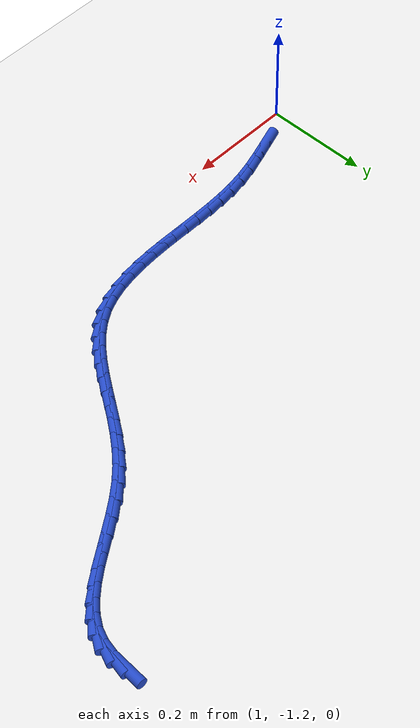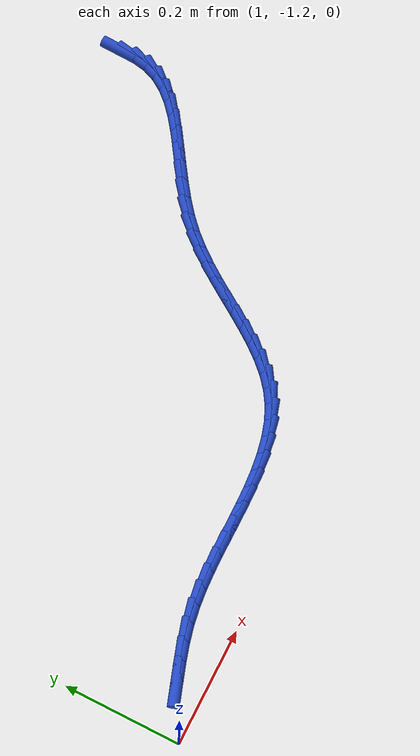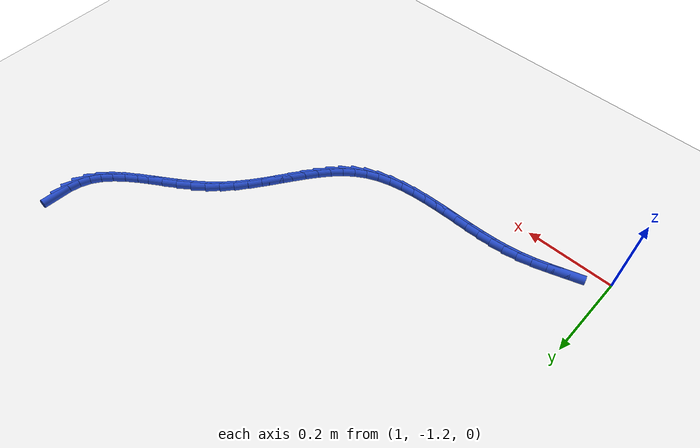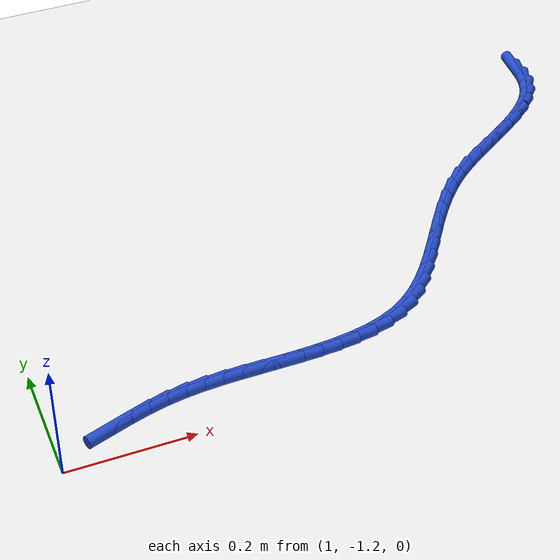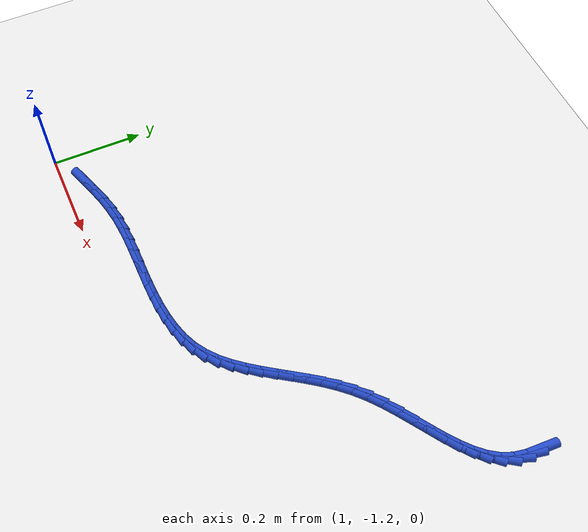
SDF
<sdf version="1.6">
 <world name="default">
  <model name="ground_plane">
   <static>1</static>
   <link name="link">
    <collision name="collision">
     <geometry><plane><normal>0 0 1</normal><size>100 100</size></plane></geometry>
     <surface><friction><ode><mu>100</mu><mu2>50</mu2></ode></friction></surface>
    </collision>
    <visual name="visual">
     <cast_shadows>0</cast_shadows>
     <geometry><plane><normal>0 0 1</normal><size>100 100</size></plane></geometry>
     <material>
      <script><uri>file://media/materials/scripts/gazebo.material</uri><name>Gazebo/WhiteGlow</name></script>
     </material>
    </visual>
   </link>
  </model>
  <model name="line">
   <link name="link_141">
    <pose>2.0271364555693054 -0.5661343951138016 0.01 0 1.57 1.5183302429395373</pose>
    <collision name="collision">
     <geometry><cylinder><radius>0.01</radius><length>0.08</length></cylinder></geometry>
    </collision>
    <visual name="visual">
     <material>
      <script><name>Gazebo/Blue</name><uri>file://media/materials/scripts/gazebo.material</uri></script>
     </material>
     <geometry><cylinder><radius>0.01</radius><length>0.08</length></cylinder></geometry>
    </visual>
   </link>
   <link name="link_142">
    <pose>2.0257152741801185 -0.5931971568366348 0.01 0 1.57 1.3664958052529699</pose>
    <collision name="collision">
     <geometry><cylinder><radius>0.01</radius><length>0.08</length></cylinder></geometry>
    </collision>
    <visual name="visual">
     <material>
      <script><name>Gazebo/Blue</name><uri>file://media/materials/scripts/gazebo.material</uri></script>
     </material>
     <geometry><cylinder><radius>0.01</radius><length>0.08</length></cylinder></geometry>
    </visual>
   </link>
   <link name="link_143">
    <pose>2.0204719739128807 -0.6185037341881778 0.01 0 1.57 1.171100520590919</pose>
    <collision name="collision">
     <geometry><cylinder><radius>0.01</radius><length>0.08</length></cylinder></geometry>
    </collision>
    <visual name="visual">
     <material>
      <script><name>Gazebo/Blue</name><uri>file://media/materials/scripts/gazebo.material</uri></script>
     </material>
     <geometry><cylinder><radius>0.01</radius><length>0.08</length></cylinder></geometry>
    </visual>
   </link>
   <link name="link_144">
    <pose>2.0106281609307888 -0.6418063016502774 0.01 0 1.57 0.9733500853774371</pose>
    <collision name="collision">
     <geometry><cylinder><radius>0.01</radius><length>0.08</length></cylinder></geometry>
    </collision>
    <visual name="visual">
     <material>
      <script><name>Gazebo/Blue</name><uri>file://media/materials/scripts/gazebo.material</uri></script>
     </material>
     <geometry><cylinder><radius>0.01</radius><length>0.08</length></cylinder></geometry>
    </visual>
   </link>
   <link name="link_145">
    <pose>1.9961014492996434 -0.663156732418748 0.01 0 1.57 0.8187681195719999</pose>
    <collision name="collision">
     <geometry><cylinder><radius>0.01</radius><length>0.08</length></cylinder></geometry>
    </collision>
    <visual name="visual">
     <material>
      <script><name>Gazebo/Blue</name><uri>file://media/materials/scripts/gazebo.material</uri></script>
     </material>
     <geometry><cylinder><radius>0.01</radius><length>0.08</length></cylinder></geometry>
    </visual>
   </link>
   <link name="link_146">
    <pose>1.9775925171220061 -0.6829440844884493 0.01 0 1.57 0.7083480207902151</pose>
    <collision name="collision">
     <geometry><cylinder><radius>0.01</radius><length>0.08</length></cylinder></geometry>
    </collision>
    <visual name="visual">
     <material>
      <script><name>Gazebo/Blue</name><uri>file://media/materials/scripts/gazebo.material</uri></script>
     </material>
     <geometry><cylinder><radius>0.01</radius><length>0.08</length></cylinder></geometry>
    </visual>
   </link>
   <link name="link_147">
    <pose>1.9558437614203243 -0.7015753798839475 0.01 0 1.57 0.6354717288499325</pose>
    <collision name="collision">
     <geometry><cylinder><radius>0.01</radius><length>0.08</length></cylinder></geometry>
    </collision>
    <visual name="visual">
     <material>
      <script><name>Gazebo/Blue</name><uri>file://media/materials/scripts/gazebo.material</uri></script>
     </material>
     <geometry><cylinder><radius>0.01</radius><length>0.08</length></cylinder></geometry>
    </visual>
   </link>
   <link name="link_148">
    <pose>1.9315975792170474 -0.7194576406298072 0.01 0 1.57 0.5934703453839583</pose>
    <collision name="collision">
     <geometry><cylinder><radius>0.01</radius><length>0.08</length></cylinder></geometry>
    </collision>
    <visual name="visual">
     <material>
      <script><name>Gazebo/Blue</name><uri>file://media/materials/scripts/gazebo.material</uri></script>
     </material>
     <geometry><cylinder><radius>0.01</radius><length>0.08</length></cylinder></geometry>
    </visual>
   </link>
   <link name="link_149">
    <pose>1.9055963675346215 -0.736997888750594 0.01 0 1.57 0.5775780833458279</pose>
    <collision name="collision">
     <geometry><cylinder><radius>0.01</radius><length>0.08</length></cylinder></geometry>
    </collision>
    <visual name="visual">
     <material>
      <script><name>Gazebo/Blue</name><uri>file://media/materials/scripts/gazebo.material</uri></script>
     </material>
     <geometry><cylinder><radius>0.01</radius><length>0.08</length></cylinder></geometry>
    </visual>
   </link>
   <link name="link_150">
    <pose>1.8785825233954947 -0.7546031462708735 0.01 0 1.57 0.5851528410249432</pose>
    <collision name="collision">
     <geometry><cylinder><radius>0.01</radius><length>0.08</length></cylinder></geometry>
    </collision>
    <visual name="visual">
     <material>
      <script><name>Gazebo/Blue</name><uri>file://media/materials/scripts/gazebo.material</uri></script>
     </material>
     <geometry><cylinder><radius>0.01</radius><length>0.08</length></cylinder></geometry>
    </visual>
   </link>
   <link name="link_151">
    <pose>1.8512984438221147 -0.7726804352152115 0.01 0 1.57 0.615416384964672</pose>
    <collision name="collision">
     <geometry><cylinder><radius>0.01</radius><length>0.08</length></cylinder></geometry>
    </collision>
    <visual name="visual">
     <material>
      <script><name>Gazebo/Blue</name><uri>file://media/materials/scripts/gazebo.material</uri></script>
     </material>
     <geometry><cylinder><radius>0.01</radius><length>0.08</length></cylinder></geometry>
    </visual>
   </link>
   <link name="link_152">
    <pose>1.8244865258369296 -0.7916367776081733 0.01 0 1.57 0.6691065834594263</pose>
    <collision name="collision">
     <geometry><cylinder><radius>0.01</radius><length>0.08</length></cylinder></geometry>
    </collision>
    <visual name="visual">
     <material>
      <script><name>Gazebo/Blue</name><uri>file://media/materials/scripts/gazebo.material</uri></script>
     </material>
     <geometry><cylinder><radius>0.01</radius><length>0.08</length></cylinder></geometry>
    </visual>
   </link>
   <link name="link_153">
    <pose>1.798889166462386 -0.8118791954743239 0.01 0 1.57 0.7469718294237057</pose>
    <collision name="collision">
     <geometry><cylinder><radius>0.01</radius><length>0.08</length></cylinder></geometry>
    </collision>
    <visual name="visual">
     <material>
      <script><name>Gazebo/Blue</name><uri>file://media/materials/scripts/gazebo.material</uri></script>
     </material>
     <geometry><cylinder><radius>0.01</radius><length>0.08</length></cylinder></geometry>
    </visual>
   </link>
   <link name="link_154">
    <pose>1.7752215038870214 -0.8337944124671288 0.01 0 1.57 0.82867931411214</pose>
    <collision name="collision">
     <geometry><cylinder><radius>0.01</radius><length>0.08</length></cylinder></geometry>
    </collision>
    <visual name="visual">
     <material>
      <script><name>Gazebo/Blue</name><uri>file://media/materials/scripts/gazebo.material</uri></script>
     </material>
     <geometry><cylinder><radius>0.01</radius><length>0.08</length></cylinder></geometry>
    </visual>
   </link>
   <link name="link_155">
    <pose>1.7536273132636349 -0.8573436850696542 0.01 0 1.57 0.8929504941734263</pose>
    <collision name="collision">
     <geometry><cylinder><radius>0.01</radius><length>0.08</length></cylinder></geometry>
    </collision>
    <visual name="visual">
     <material>
      <script><name>Gazebo/Blue</name><uri>file://media/materials/scripts/gazebo.material</uri></script>
     </material>
     <geometry><cylinder><radius>0.01</radius><length>0.08</length></cylinder></geometry>
    </visual>
   </link>
   <link name="link_156">
    <pose>1.7337082832086155 -0.8820846034261689 0.01 0 1.57 0.9384947552986057</pose>
    <collision name="collision">
     <geometry><cylinder><radius>0.01</radius><length>0.08</length></cylinder></geometry>
    </collision>
    <visual name="visual">
     <material>
      <script><name>Gazebo/Blue</name><uri>file://media/materials/scripts/gazebo.material</uri></script>
     </material>
     <geometry><cylinder><radius>0.01</radius><length>0.08</length></cylinder></geometry>
    </visual>
   </link>
   <link name="link_157">
    <pose>1.7150447038830647 -0.9075588232580777 0.01 0 1.57 0.9652126753219958</pose>
    <collision name="collision">
     <geometry><cylinder><radius>0.01</radius><length>0.08</length></cylinder></geometry>
    </collision>
    <visual name="visual">
     <material>
      <script><name>Gazebo/Blue</name><uri>file://media/materials/scripts/gazebo.material</uri></script>
     </material>
     <geometry><cylinder><radius>0.01</radius><length>0.08</length></cylinder></geometry>
    </visual>
   </link>
   <link name="link_158">
    <pose>1.6972168654480846 -0.933308000286785 0.01 0 1.57 0.9728959787676129</pose>
    <collision name="collision">
     <geometry><cylinder><radius>0.01</radius><length>0.08</length></cylinder></geometry>
    </collision>
    <visual name="visual">
     <material>
      <script><name>Gazebo/Blue</name><uri>file://media/materials/scripts/gazebo.material</uri></script>
     </material>
     <geometry><cylinder><radius>0.01</radius><length>0.08</length></cylinder></geometry>
    </visual>
   </link>
   <link name="link_159">
    <pose>1.6798050580647774 -0.958873790233695 0.01 0 1.57 0.9609151668776066</pose>
    <collision name="collision">
     <geometry><cylinder><radius>0.01</radius><length>0.08</length></cylinder></geometry>
    </collision>
    <visual name="visual">
     <material>
      <script><name>Gazebo/Blue</name><uri>file://media/materials/scripts/gazebo.material</uri></script>
     </material>
     <geometry><cylinder><radius>0.01</radius><length>0.08</length></cylinder></geometry>
    </visual>
   </link>
   <link name="link_160">
    <pose>1.6623895718942452 -0.9837978488202122 0.01 0 1.57 0.9280777435840438</pose>
    <collision name="collision">
     <geometry><cylinder><radius>0.01</radius><length>0.08</length></cylinder></geometry>
    </collision>
    <visual name="visual">
     <material>
      <script><name>Gazebo/Blue</name><uri>file://media/materials/scripts/gazebo.material</uri></script>
     </material>
     <geometry><cylinder><radius>0.01</radius><length>0.08</length></cylinder></geometry>
    </visual>
   </link>
   <link name="link_161">
    <pose>1.6445506970975905 -1.0076218317677408 0.01 0 1.57 0.872692365067408</pose>
    <collision name="collision">
     <geometry><cylinder><radius>0.01</radius><length>0.08</length></cylinder></geometry>
    </collision>
    <visual name="visual">
     <material>
      <script><name>Gazebo/Blue</name><uri>file://media/materials/scripts/gazebo.material</uri></script>
     </material>
     <geometry><cylinder><radius>0.01</radius><length>0.08</length></cylinder></geometry>
    </visual>
   </link>
   <link name="link_162">
    <pose>1.6258687238359144 -1.0298873947976857 0.01 0 1.57 0.7929618456469484</pose>
    <collision name="collision">
     <geometry><cylinder><radius>0.01</radius><length>0.08</length></cylinder></geometry>
    </collision>
    <visual name="visual">
     <material>
      <script><name>Gazebo/Blue</name><uri>file://media/materials/scripts/gazebo.material</uri></script>
     </material>
     <geometry><cylinder><radius>0.01</radius><length>0.08</length></cylinder></geometry>
    </visual>
   </link>
   <link name="link_163">
    <pose>1.60592394227032 -1.05013619363145 0.01 0 1.57 0.6879033599499847</pose>
    <collision name="collision">
     <geometry><cylinder><radius>0.01</radius><length>0.08</length></cylinder></geometry>
    </collision>
    <visual name="visual">
     <material>
      <script><name>Gazebo/Blue</name><uri>file://media/materials/scripts/gazebo.material</uri></script>
     </material>
     <geometry><cylinder><radius>0.01</radius><length>0.08</length></cylinder></geometry>
    </visual>
   </link>
   <link name="link_164">
    <pose>1.5842966425619092 -1.0679098839904386 0.01 0 1.57 0.5588805724293651</pose>
    <collision name="collision">
     <geometry><cylinder><radius>0.01</radius><length>0.08</length></cylinder></geometry>
    </collision>
    <visual name="visual">
     <material>
      <script><name>Gazebo/Blue</name><uri>file://media/materials/scripts/gazebo.material</uri></script>
     </material>
     <geometry><cylinder><radius>0.01</radius><length>0.08</length></cylinder></geometry>
    </visual>
   </link>
   <link name="link_165">
    <pose>1.560567114871784 -1.0827501215960558 0.01 0 1.57 0.4167804929068051</pose>
    <collision name="collision">
     <geometry><cylinder><radius>0.01</radius><length>0.08</length></cylinder></geometry>
    </collision>
    <visual name="visual">
     <material>
      <script><name>Gazebo/Blue</name><uri>file://media/materials/scripts/gazebo.material</uri></script>
     </material>
     <geometry><cylinder><radius>0.01</radius><length>0.08</length></cylinder></geometry>
    </visual>
   </link>
   <link name="link_166">
    <pose>1.5344410425664112 -1.0943165652277793 0.01 0 1.57 0.29484664805437266</pose>
    <collision name="collision">
     <geometry><cylinder><radius>0.01</radius><length>0.08</length></cylinder></geometry>
    </collision>
    <visual name="visual">
     <material>
      <script><name>Gazebo/Blue</name><uri>file://media/materials/scripts/gazebo.material</uri></script>
     </material>
     <geometry><cylinder><radius>0.01</radius><length>0.08</length></cylinder></geometry>
    </visual>
   </link>
   <link name="link_167">
    <pose>1.506266285336523 -1.102873202822039 0.01 0 1.57 0.19965170495456364</pose>
    <collision name="collision">
     <geometry><cylinder><radius>0.01</radius><length>0.08</length></cylinder></geometry>
    </collision>
    <visual name="visual">
     <material>
      <script><name>Gazebo/Blue</name><uri>file://media/materials/scripts/gazebo.material</uri></script>
     </material>
     <geometry><cylinder><radius>0.01</radius><length>0.08</length></cylinder></geometry>
    </visual>
   </link>
   <link name="link_168">
    <pose>1.4765957283818674 -1.1088769644844712 0.01 0 1.57 0.1269666443168089</pose>
    <collision name="collision">
     <geometry><cylinder><radius>0.01</radius><length>0.08</length></cylinder></geometry>
    </collision>
    <visual name="visual">
     <material>
      <script><name>Gazebo/Blue</name><uri>file://media/materials/scripts/gazebo.material</uri></script>
     </material>
     <geometry><cylinder><radius>0.01</radius><length>0.08</length></cylinder></geometry>
    </visual>
   </link>
   <link name="link_169">
    <pose>1.4459823464592343 -1.1127848645996399 0.01 0 1.57 0.07305736942167348</pose>
    <collision name="collision">
     <geometry><cylinder><radius>0.01</radius><length>0.08</length></cylinder></geometry>
    </collision>
    <visual name="visual">
     <material>
      <script><name>Gazebo/Blue</name><uri>file://media/materials/scripts/gazebo.material</uri></script>
     </material>
     <geometry><cylinder><radius>0.01</radius><length>0.08</length></cylinder></geometry>
    </visual>
   </link>
   <link name="link_170">
    <pose>1.4149791143254138 -1.1150539175521104 0.01 0 1.57 0.035234701537548575</pose>
    <collision name="collision">
     <geometry><cylinder><radius>0.01</radius><length>0.08</length></cylinder></geometry>
    </collision>
    <visual name="visual">
     <material>
      <script><name>Gazebo/Blue</name><uri>file://media/materials/scripts/gazebo.material</uri></script>
     </material>
     <geometry><cylinder><radius>0.01</radius><length>0.08</length></cylinder></geometry>
    </visual>
   </link>
   <link name="link_171">
    <pose>1.3841374270456313 -1.1161410651277446 0.01 0 1.57 0.01161215288314044</pose>
    <collision name="collision">
     <geometry><cylinder><radius>0.01</radius><length>0.08</length></cylinder></geometry>
    </collision>
    <visual name="visual">
     <material>
      <script><name>Gazebo/Blue</name><uri>file://media/materials/scripts/gazebo.material</uri></script>
     </material>
     <geometry><cylinder><radius>0.01</radius><length>0.08</length></cylinder></geometry>
    </visual>
   </link>
   <link name="link_172">
    <pose>1.3537948774102269 -1.1164934232906885 0.01 0 1.57 0.001503783829373131</pose>
    <collision name="collision">
     <geometry><cylinder><radius>0.01</radius><length>0.08</length></cylinder></geometry>
    </collision>
    <visual name="visual">
     <material>
      <script><name>Gazebo/Blue</name><uri>file://media/materials/scripts/gazebo.material</uri></script>
     </material>
     <geometry><cylinder><radius>0.01</radius><length>0.08</length></cylinder></geometry>
    </visual>
   </link>
   <link name="link_173">
    <pose>1.3238610398817912 -1.1165384373454459 0.01 0 1.57 0.005486628112200989</pose>
    <collision name="collision">
     <geometry><cylinder><radius>0.01</radius><length>0.08</length></cylinder></geometry>
    </collision>
    <visual name="visual">
     <material>
      <script><name>Gazebo/Blue</name><uri>file://media/materials/scripts/gazebo.material</uri></script>
     </material>
     <geometry><cylinder><radius>0.01</radius><length>0.08</length></cylinder></geometry>
    </visual>
   </link>
   <link name="link_174">
    <pose>1.2941944801384315 -1.1167012083594328 0.01 0 1.57 0.023882118351031864</pose>
    <collision name="collision">
     <geometry><cylinder><radius>0.01</radius><length>0.08</length></cylinder></geometry>
    </collision>
    <visual name="visual">
     <material>
      <script><name>Gazebo/Blue</name><uri>file://media/materials/scripts/gazebo.material</uri></script>
     </material>
     <geometry><cylinder><radius>0.01</radius><length>0.08</length></cylinder></geometry>
    </visual>
   </link>
   <link name="link_175">
    <pose>1.264653763858256 -1.1174068374000643 0.01 0 1.57 0.056563322163892496</pose>
    <collision name="collision">
     <geometry><cylinder><radius>0.01</radius><length>0.08</length></cylinder></geometry>
    </collision>
    <visual name="visual">
     <material>
      <script><name>Gazebo/Blue</name><uri>file://media/materials/scripts/gazebo.material</uri></script>
     </material>
     <geometry><cylinder><radius>0.01</radius><length>0.08</length></cylinder></geometry>
    </visual>
   </link>
   <link name="link_176">
    <pose>1.2350974567193735 -1.1190804255347568 0.01 0 1.57 0.10284369422951496</pose>
    <collision name="collision">
     <geometry><cylinder><radius>0.01</radius><length>0.08</length></cylinder></geometry>
    </collision>
    <visual name="visual">
     <material>
      <script><name>Gazebo/Blue</name><uri>file://media/materials/scripts/gazebo.material</uri></script>
     </material>
     <geometry><cylinder><radius>0.01</radius><length>0.08</length></cylinder></geometry>
    </visual>
   </link>
   <link name="link_177">
    <pose>1.205384124399891 -1.1221470738309258 0.01 0 1.57 0.16134813589297467</pose>
    <collision name="collision">
     <geometry><cylinder><radius>0.01</radius><length>0.08</length></cylinder></geometry>
    </collision>
    <visual name="visual">
     <material>
      <script><name>Gazebo/Blue</name><uri>file://media/materials/scripts/gazebo.material</uri></script>
     </material>
     <geometry><cylinder><radius>0.01</radius><length>0.08</length></cylinder></geometry>
    </visual>
   </link>
   <link name="link_178">
    <pose>1.1753723325779184 -1.1270318833559874 0.01 0 1.57 0.22959448200286853</pose>
    <collision name="collision">
     <geometry><cylinder><radius>0.01</radius><length>0.08</length></cylinder></geometry>
    </collision>
    <visual name="visual">
     <material>
      <script><name>Gazebo/Blue</name><uri>file://media/materials/scripts/gazebo.material</uri></script>
     </material>
     <geometry><cylinder><radius>0.01</radius><length>0.08</length></cylinder></geometry>
    </visual>
   </link>
   <link name="link_179">
    <pose>1.1449240799795977 -1.1341481166002592 0.01 0 1.57 0.28967463921848113</pose>
    <collision name="collision">
     <geometry><cylinder><radius>0.01</radius><length>0.08</length></cylinder></geometry>
    </collision>
    <visual name="visual">
     <material>
      <script><name>Gazebo/Blue</name><uri>file://media/materials/scripts/gazebo.material</uri></script>
     </material>
     <geometry><cylinder><radius>0.01</radius><length>0.08</length></cylinder></geometry>
    </visual>
   </link>
   <link name="link_180">
    <pose>1.114064628103975 -1.1433460381277858 0.01 0 1.57 0.32159715012399104</pose>
    <collision name="collision">
     <geometry><cylinder><radius>0.01</radius><length>0.08</length></cylinder></geometry>
    </collision>
    <visual name="visual">
     <material>
      <script><name>Gazebo/Blue</name><uri>file://media/materials/scripts/gazebo.material</uri></script>
     </material>
     <geometry><cylinder><radius>0.01</radius><length>0.08</length></cylinder></geometry>
    </visual>
   </link>
   <link name="link_181">
    <pose>1.0830503817921946 -1.1536788341487545 0.01 0 1.57 0.3264637747095045</pose>
    <collision name="collision">
     <geometry><cylinder><radius>0.01</radius><length>0.08</length></cylinder></geometry>
    </collision>
    <visual name="visual">
     <material>
      <script><name>Gazebo/Blue</name><uri>file://media/materials/scripts/gazebo.material</uri></script>
     </material>
     <geometry><cylinder><radius>0.01</radius><length>0.08</length></cylinder></geometry>
    </visual>
   </link>
  </model>
 </world>
</sdf>
